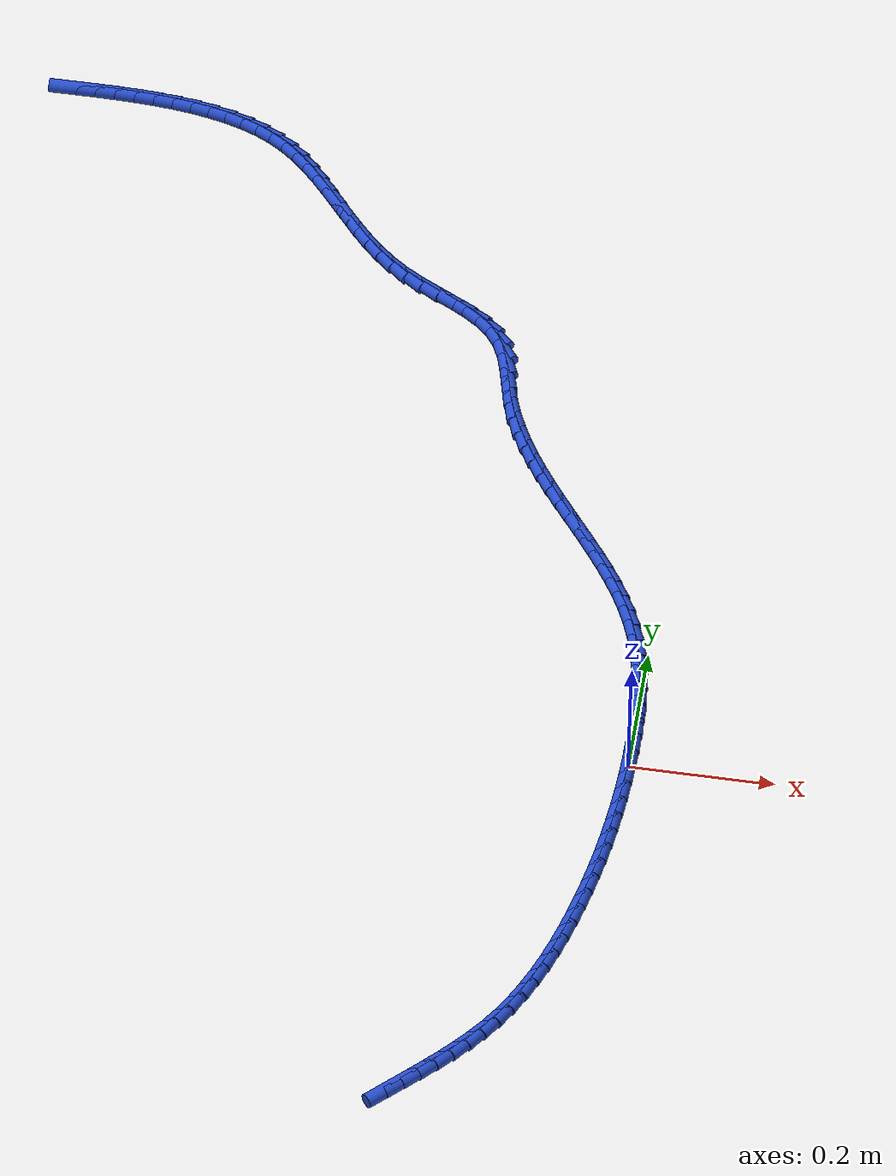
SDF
<sdf version="1.6">
 <world name="default">
  <model name="ground_plane">
   <static>1</static>
   <link name="link">
    <collision name="collision">
     <geometry><plane><normal>0 0 1</normal><size>100 100</size></plane></geometry>
     <surface><friction><ode><mu>100</mu><mu2>50</mu2></ode></friction></surface>
    </collision>
    <visual name="visual">
     <cast_shadows>0</cast_shadows>
     <geometry><plane><normal>0 0 1</normal><size>100 100</size></plane></geometry>
     <material>
      <script><uri>file://media/materials/scripts/gazebo.material</uri><name>Gazebo/WhiteGlow</name></script>
     </material>
    </visual>
   </link>
  </model>
  <model name="line">
   <link name="link_0">
    <pose>-9.107298248878237e-18 4.163336342344337e-17 0.01 0 1.57 1.551484172950166</pose>
    <collision name="collision">
     <geometry><cylinder><radius>0.01</radius><length>0.08</length></cylinder></geometry>
    </collision>
    <visual name="visual">
     <material>
      <script><name>Gazebo/Blue</name><uri>file://media/materials/scripts/gazebo.material</uri></script>
     </material>
     <geometry><cylinder><radius>0.01</radius><length>0.08</length></cylinder></geometry>
    </visual>
   </link>
   <link name="link_1">
    <pose>0.0005427913405773272 0.02810271001218487 0.01 0 1.57 -1.565745009043975</pose>
    <collision name="collision">
     <geometry><cylinder><radius>0.01</radius><length>0.08</length></cylinder></geometry>
    </collision>
    <visual name="visual">
     <material>
      <script><name>Gazebo/Blue</name><uri>file://media/materials/scripts/gazebo.material</uri></script>
     </material>
     <geometry><cylinder><radius>0.01</radius><length>0.08</length></cylinder></geometry>
    </visual>
   </link>
   <link name="link_2">
    <pose>0.00040029658367146204 0.05631189264009979 0.01 0 1.57 -1.5363101366053682</pose>
    <collision name="collision">
     <geometry><cylinder><radius>0.01</radius><length>0.08</length></cylinder></geometry>
    </collision>
    <visual name="visual">
     <material>
      <script><name>Gazebo/Blue</name><uri>file://media/materials/scripts/gazebo.material</uri></script>
     </material>
     <geometry><cylinder><radius>0.01</radius><length>0.08</length></cylinder></geometry>
    </visual>
   </link>
   <link name="link_3">
    <pose>-0.0005725924026010101 0.08451168118131286 0.01 0 1.57 -1.5015067465468235</pose>
    <collision name="collision">
     <geometry><cylinder><radius>0.01</radius><length>0.08</length></cylinder></geometry>
    </collision>
    <visual name="visual">
     <material>
      <script><name>Gazebo/Blue</name><uri>file://media/materials/scripts/gazebo.material</uri></script>
     </material>
     <geometry><cylinder><radius>0.01</radius><length>0.08</length></cylinder></geometry>
    </visual>
   </link>
   <link name="link_4">
    <pose>-0.002520983750123495 0.1125862089333922 0.01 0 1.57 -1.4609766809511677</pose>
    <collision name="collision">
     <geometry><cylinder><radius>0.01</radius><length>0.08</length></cylinder></geometry>
    </collision>
    <visual name="visual">
     <material>
      <script><name>Gazebo/Blue</name><uri>file://media/materials/scripts/gazebo.material</uri></script>
     </material>
     <geometry><cylinder><radius>0.01</radius><length>0.08</length></cylinder></geometry>
    </visual>
   </link>
   <link name="link_5">
    <pose>-0.005589985590779398 0.14041960919390578 0.01 0 1.57 -1.414324397645262</pose>
    <collision name="collision">
     <geometry><cylinder><radius>0.01</radius><length>0.08</length></cylinder></geometry>
    </collision>
    <visual name="visual">
     <material>
      <script><name>Gazebo/Blue</name><uri>file://media/materials/scripts/gazebo.material</uri></script>
     </material>
     <geometry><cylinder><radius>0.01</radius><length>0.08</length></cylinder></geometry>
    </visual>
   </link>
   <link name="link_6">
    <pose>-0.009924706056452128 0.16789601526042172 0.01 0 1.57 -1.3611525101138615</pose>
    <collision name="collision">
     <geometry><cylinder><radius>0.01</radius><length>0.08</length></cylinder></geometry>
    </collision>
    <visual name="visual">
     <material>
      <script><name>Gazebo/Blue</name><uri>file://media/materials/scripts/gazebo.material</uri></script>
     </material>
     <geometry><cylinder><radius>0.01</radius><length>0.08</length></cylinder></geometry>
    </visual>
   </link>
   <link name="link_7">
    <pose>-0.015670253279025083 0.19489956043050793 0.01 0 1.57 -1.3011140120505347</pose>
    <collision name="collision">
     <geometry><cylinder><radius>0.01</radius><length>0.08</length></cylinder></geometry>
    </collision>
    <visual name="visual">
     <material>
      <script><name>Gazebo/Blue</name><uri>file://media/materials/scripts/gazebo.material</uri></script>
     </material>
     <geometry><cylinder><radius>0.01</radius><length>0.08</length></cylinder></geometry>
    </visual>
   </link>
   <link name="link_8">
    <pose>-0.022971735390381675 0.22131437800173268 0.01 0 1.57 -1.234057572113319</pose>
    <collision name="collision">
     <geometry><cylinder><radius>0.01</radius><length>0.08</length></cylinder></geometry>
    </collision>
    <visual name="visual">
     <material>
      <script><name>Gazebo/Blue</name><uri>file://media/materials/scripts/gazebo.material</uri></script>
     </material>
     <geometry><cylinder><radius>0.01</radius><length>0.08</length></cylinder></geometry>
    </visual>
   </link>
   <link name="link_9">
    <pose>-0.03197252396105613 0.2470256445715553 0.01 0 1.57 -1.1655607419627865</pose>
    <collision name="collision">
     <geometry><cylinder><radius>0.01</radius><length>0.08</length></cylinder></geometry>
    </collision>
    <visual name="visual">
     <material>
      <script><name>Gazebo/Blue</name><uri>file://media/materials/scripts/gazebo.material</uri></script>
     </material>
     <geometry><cylinder><radius>0.01</radius><length>0.08</length></cylinder></geometry>
    </visual>
   </link>
   <link name="link_10">
    <pose>-0.042684838785796576 0.2719973307480866 0.01 0 1.57 -1.1054644885469476</pose>
    <collision name="collision">
     <geometry><cylinder><radius>0.01</radius><length>0.08</length></cylinder></geometry>
    </collision>
    <visual name="visual">
     <material>
      <script><name>Gazebo/Blue</name><uri>file://media/materials/scripts/gazebo.material</uri></script>
     </material>
     <geometry><cylinder><radius>0.01</radius><length>0.08</length></cylinder></geometry>
    </visual>
   </link>
   <link name="link_11">
    <pose>-0.054900380949217856 0.2963258914576315 0.01 0 1.57 -1.055064962549709</pose>
    <collision name="collision">
     <geometry><cylinder><radius>0.01</radius><length>0.08</length></cylinder></geometry>
    </collision>
    <visual name="visual">
     <material>
      <script><name>Gazebo/Blue</name><uri>file://media/materials/scripts/gazebo.material</uri></script>
     </material>
     <geometry><cylinder><radius>0.01</radius><length>0.08</length></cylinder></geometry>
    </visual>
   </link>
   <link name="link_12">
    <pose>-0.06838971442847842 0.3201204804821537 0.01 0 1.57 -1.0144284640028725</pose>
    <collision name="collision">
     <geometry><cylinder><radius>0.01</radius><length>0.08</length></cylinder></geometry>
    </collision>
    <visual name="visual">
     <material>
      <script><name>Gazebo/Blue</name><uri>file://media/materials/scripts/gazebo.material</uri></script>
     </material>
     <geometry><cylinder><radius>0.01</radius><length>0.08</length></cylinder></geometry>
    </visual>
   </link>
   <link name="link_13">
    <pose>-0.08292340320073685 0.3434902516036167 0.01 0 1.57 -0.9834184994799567</pose>
    <collision name="collision">
     <geometry><cylinder><radius>0.01</radius><length>0.08</length></cylinder></geometry>
    </collision>
    <visual name="visual">
     <material>
      <script><name>Gazebo/Blue</name><uri>file://media/materials/scripts/gazebo.material</uri></script>
     </material>
     <geometry><cylinder><radius>0.01</radius><length>0.08</length></cylinder></geometry>
    </visual>
   </link>
   <link name="link_14">
    <pose>-0.0982720112431516 0.366544358603984 0.01 0 1.57 -0.9618122379678639</pose>
    <collision name="collision">
     <geometry><cylinder><radius>0.01</radius><length>0.08</length></cylinder></geometry>
    </collision>
    <visual name="visual">
     <material>
      <script><name>Gazebo/Blue</name><uri>file://media/materials/scripts/gazebo.material</uri></script>
     </material>
     <geometry><cylinder><radius>0.01</radius><length>0.08</length></cylinder></geometry>
    </visual>
   </link>
   <link name="link_15">
    <pose>-0.11420610253288122 0.38939195526521914 0.01 0 1.57 -0.9493845383832721</pose>
    <collision name="collision">
     <geometry><cylinder><radius>0.01</radius><length>0.08</length></cylinder></geometry>
    </collision>
    <visual name="visual">
     <material>
      <script><name>Gazebo/Blue</name><uri>file://media/materials/scripts/gazebo.material</uri></script>
     </material>
     <geometry><cylinder><radius>0.01</radius><length>0.08</length></cylinder></geometry>
    </visual>
   </link>
   <link name="link_16">
    <pose>-0.13049624104708418 0.4121421953692855 0.01 0 1.57 -0.945961211068427</pose>
    <collision name="collision">
     <geometry><cylinder><radius>0.01</radius><length>0.08</length></cylinder></geometry>
    </collision>
    <visual name="visual">
     <material>
      <script><name>Gazebo/Blue</name><uri>file://media/materials/scripts/gazebo.material</uri></script>
     </material>
     <geometry><cylinder><radius>0.01</radius><length>0.08</length></cylinder></geometry>
    </visual>
   </link>
   <link name="link_17">
    <pose>-0.14691299076291903 0.43490423269814693 0.01 0 1.57 -0.9514463935267233</pose>
    <collision name="collision">
     <geometry><cylinder><radius>0.01</radius><length>0.08</length></cylinder></geometry>
    </collision>
    <visual name="visual">
     <material>
      <script><name>Gazebo/Blue</name><uri>file://media/materials/scripts/gazebo.material</uri></script>
     </material>
     <geometry><cylinder><radius>0.01</radius><length>0.08</length></cylinder></geometry>
    </visual>
   </link>
   <link name="link_18">
    <pose>-0.16322691565754427 0.45778722103376657 0.01 0 1.57 -0.965828306093649</pose>
    <collision name="collision">
     <geometry><cylinder><radius>0.01</radius><length>0.08</length></cylinder></geometry>
    </collision>
    <visual name="visual">
     <material>
      <script><name>Gazebo/Blue</name><uri>file://media/materials/scripts/gazebo.material</uri></script>
     </material>
     <geometry><cylinder><radius>0.01</radius><length>0.08</length></cylinder></geometry>
    </visual>
   </link>
   <link name="link_19">
    <pose>-0.17920857970811843 0.4809003141581081 0.01 0 1.57 -0.9891653862440924</pose>
    <collision name="collision">
     <geometry><cylinder><radius>0.01</radius><length>0.08</length></cylinder></geometry>
    </collision>
    <visual name="visual">
     <material>
      <script><name>Gazebo/Blue</name><uri>file://media/materials/scripts/gazebo.material</uri></script>
     </material>
     <geometry><cylinder><radius>0.01</radius><length>0.08</length></cylinder></geometry>
    </visual>
   </link>
   <link name="link_20">
    <pose>-0.19462854689179998 0.504352665853135 0.01 0 1.57 -1.0215523020878132</pose>
    <collision name="collision">
     <geometry><cylinder><radius>0.01</radius><length>0.08</length></cylinder></geometry>
    </collision>
    <visual name="visual">
     <material>
      <script><name>Gazebo/Blue</name><uri>file://media/materials/scripts/gazebo.material</uri></script>
     </material>
     <geometry><cylinder><radius>0.01</radius><length>0.08</length></cylinder></geometry>
    </visual>
   </link>
   <link name="link_21">
    <pose>-0.20925738118574744 0.5282534299008108 0.01 0 1.57 -1.063063683374744</pose>
    <collision name="collision">
     <geometry><cylinder><radius>0.01</radius><length>0.08</length></cylinder></geometry>
    </collision>
    <visual name="visual">
     <material>
      <script><name>Gazebo/Blue</name><uri>file://media/materials/scripts/gazebo.material</uri></script>
     </material>
     <geometry><cylinder><radius>0.01</radius><length>0.08</length></cylinder></geometry>
    </visual>
   </link>
   <link name="link_22">
    <pose>-0.22286564656711938 0.5527117600830993 0.01 0 1.57 -1.1136737793806426</pose>
    <collision name="collision">
     <geometry><cylinder><radius>0.01</radius><length>0.08</length></cylinder></geometry>
    </collision>
    <visual name="visual">
     <material>
      <script><name>Gazebo/Blue</name><uri>file://media/materials/scripts/gazebo.material</uri></script>
     </material>
     <geometry><cylinder><radius>0.01</radius><length>0.08</length></cylinder></geometry>
    </visual>
   </link>
   <link name="link_23">
    <pose>-0.23522390701307427 0.5778368101819635 0.01 0 1.57 -1.1731541740522073</pose>
    <collision name="collision">
     <geometry><cylinder><radius>0.01</radius><length>0.08</length></cylinder></geometry>
    </collision>
    <visual name="visual">
     <material>
      <script><name>Gazebo/Blue</name><uri>file://media/materials/scripts/gazebo.material</uri></script>
     </material>
     <geometry><cylinder><radius>0.01</radius><length>0.08</length></cylinder></geometry>
    </visual>
   </link>
   <link name="link_24">
    <pose>-0.24610272650077059 0.6037377339793673 0.01 0 1.57 -1.24096045702606</pose>
    <collision name="collision">
     <geometry><cylinder><radius>0.01</radius><length>0.08</length></cylinder></geometry>
    </collision>
    <visual name="visual">
     <material>
      <script><name>Gazebo/Blue</name><uri>file://media/materials/scripts/gazebo.material</uri></script>
     </material>
     <geometry><cylinder><radius>0.01</radius><length>0.08</length></cylinder></geometry>
    </visual>
   </link>
   <link name="link_25">
    <pose>-0.25527266900736684 0.630523685257274 0.01 0 1.57 -1.3113827533540725</pose>
    <collision name="collision">
     <geometry><cylinder><radius>0.01</radius><length>0.08</length></cylinder></geometry>
    </collision>
    <visual name="visual">
     <material>
      <script><name>Gazebo/Blue</name><uri>file://media/materials/scripts/gazebo.material</uri></script>
     </material>
     <geometry><cylinder><radius>0.01</radius><length>0.08</length></cylinder></geometry>
    </visual>
   </link>
   <link name="link_26">
    <pose>-0.2626243480211201 0.65822471452186 0.01 0 1.57 -1.3376726835134465</pose>
    <collision name="collision">
     <geometry><cylinder><radius>0.01</radius><length>0.08</length></cylinder></geometry>
    </collision>
    <visual name="visual">
     <material>
      <script><name>Gazebo/Blue</name><uri>file://media/materials/scripts/gazebo.material</uri></script>
     </material>
     <geometry><cylinder><radius>0.01</radius><length>0.08</length></cylinder></geometry>
    </visual>
   </link>
   <link name="link_27">
    <pose>-0.2692397196739341 0.6860858702844164 0.01 0 1.57 -1.2931679342303561</pose>
    <collision name="collision">
     <geometry><cylinder><radius>0.01</radius><length>0.08</length></cylinder></geometry>
    </collision>
    <visual name="visual">
     <material>
      <script><name>Gazebo/Blue</name><uri>file://media/materials/scripts/gazebo.material</uri></script>
     </material>
     <geometry><cylinder><radius>0.01</radius><length>0.08</length></cylinder></geometry>
    </visual>
   </link>
   <link name="link_28">
    <pose>-0.2768823166532206 0.7129030952019313 0.01 0 1.57 -1.1688672299421539</pose>
    <collision name="collision">
     <geometry><cylinder><radius>0.01</radius><length>0.08</length></cylinder></geometry>
    </collision>
    <visual name="visual">
     <material>
      <script><name>Gazebo/Blue</name><uri>file://media/materials/scripts/gazebo.material</uri></script>
     </material>
     <geometry><cylinder><radius>0.01</radius><length>0.08</length></cylinder></geometry>
    </visual>
   </link>
   <link name="link_29">
    <pose>-0.2873236914929968 0.7374670474772387 0.01 0 1.57 -0.9625971926734253</pose>
    <collision name="collision">
     <geometry><cylinder><radius>0.01</radius><length>0.08</length></cylinder></geometry>
    </collision>
    <visual name="visual">
     <material>
      <script><name>Gazebo/Blue</name><uri>file://media/materials/scripts/gazebo.material</uri></script>
     </material>
     <geometry><cylinder><radius>0.01</radius><length>0.08</length></cylinder></geometry>
    </visual>
   </link>
   <link name="link_30">
    <pose>-0.3021240761465666 0.7587245869912512 0.01 0 1.57 -0.7636432868093413</pose>
    <collision name="collision">
     <geometry><cylinder><radius>0.01</radius><length>0.08</length></cylinder></geometry>
    </collision>
    <visual name="visual">
     <material>
      <script><name>Gazebo/Blue</name><uri>file://media/materials/scripts/gazebo.material</uri></script>
     </material>
     <geometry><cylinder><radius>0.01</radius><length>0.08</length></cylinder></geometry>
    </visual>
   </link>
   <link name="link_31">
    <pose>-0.32111128002613154 0.7769031271192484 0.01 0 1.57 -0.6241413143283348</pose>
    <collision name="collision">
     <geometry><cylinder><radius>0.01</radius><length>0.08</length></cylinder></geometry>
    </collision>
    <visual name="visual">
     <material>
      <script><name>Gazebo/Blue</name><uri>file://media/materials/scripts/gazebo.material</uri></script>
     </material>
     <geometry><cylinder><radius>0.01</radius><length>0.08</length></cylinder></geometry>
    </visual>
   </link>
   <link name="link_32">
    <pose>-0.3432644490844522 0.7928573871810703 0.01 0 1.57 -0.5408287048338407</pose>
    <collision name="collision">
     <geometry><cylinder><radius>0.01</radius><length>0.08</length></cylinder></geometry>
    </collision>
    <visual name="visual">
     <material>
      <script><name>Gazebo/Blue</name><uri>file://media/materials/scripts/gazebo.material</uri></script>
     </material>
     <geometry><cylinder><radius>0.01</radius><length>0.08</length></cylinder></geometry>
    </visual>
   </link>
   <link name="link_33">
    <pose>-0.3675569112519301 0.807446386999863 0.01 0 1.57 -0.5061602920310745</pose>
    <collision name="collision">
     <geometry><cylinder><radius>0.01</radius><length>0.08</length></cylinder></geometry>
    </collision>
    <visual name="visual">
     <material>
      <script><name>Gazebo/Blue</name><uri>file://media/materials/scripts/gazebo.material</uri></script>
     </material>
     <geometry><cylinder><radius>0.01</radius><length>0.08</length></cylinder></geometry>
    </visual>
   </link>
   <link name="link_34">
    <pose>-0.3929619944589669 0.821529146398772 0.01 0 1.57 -0.5152704477597619</pose>
    <collision name="collision">
     <geometry><cylinder><radius>0.01</radius><length>0.08</length></cylinder></geometry>
    </collision>
    <visual name="visual">
     <material>
      <script><name>Gazebo/Blue</name><uri>file://media/materials/scripts/gazebo.material</uri></script>
     </material>
     <geometry><cylinder><radius>0.01</radius><length>0.08</length></cylinder></geometry>
    </visual>
   </link>
   <link name="link_35">
    <pose>-0.4184530266359636 0.8359646852009417 0.01 0 1.57 -0.5674367135877375</pose>
    <collision name="collision">
     <geometry><cylinder><radius>0.01</radius><length>0.08</length></cylinder></geometry>
    </collision>
    <visual name="visual">
     <material>
      <script><name>Gazebo/Blue</name><uri>file://media/materials/scripts/gazebo.material</uri></script>
     </material>
     <geometry><cylinder><radius>0.01</radius><length>0.08</length></cylinder></geometry>
    </visual>
   </link>
   <link name="link_36">
    <pose>-0.44300333571332207 0.8516120232295181 0.01 0 1.57 -0.656594400091862</pose>
    <collision name="collision">
     <geometry><cylinder><radius>0.01</radius><length>0.08</length></cylinder></geometry>
    </collision>
    <visual name="visual">
     <material>
      <script><name>Gazebo/Blue</name><uri>file://media/materials/scripts/gazebo.material</uri></script>
     </material>
     <geometry><cylinder><radius>0.01</radius><length>0.08</length></cylinder></geometry>
    </visual>
   </link>
   <link name="link_37">
    <pose>-0.4657708135645299 0.8691580612607689 0.01 0 1.57 -0.7422710341360119</pose>
    <collision name="collision">
     <geometry><cylinder><radius>0.01</radius><length>0.08</length></cylinder></geometry>
    </collision>
    <visual name="visual">
     <material>
      <script><name>Gazebo/Blue</name><uri>file://media/materials/scripts/gazebo.material</uri></script>
     </material>
     <geometry><cylinder><radius>0.01</radius><length>0.08</length></cylinder></geometry>
    </visual>
   </link>
   <link name="link_38">
    <pose>-0.48680837306795843 0.8884550291177987 0.01 0 1.57 -0.8106165457230103</pose>
    <collision name="collision">
     <geometry><cylinder><radius>0.01</radius><length>0.08</length></cylinder></geometry>
    </collision>
    <visual name="visual">
     <material>
      <script><name>Gazebo/Blue</name><uri>file://media/materials/scripts/gazebo.material</uri></script>
     </material>
     <geometry><cylinder><radius>0.01</radius><length>0.08</length></cylinder></geometry>
    </visual>
   </link>
   <link name="link_39">
    <pose>-0.5064398553271532 0.9091024967210815 0.01 0 1.57 -0.8611785684220311</pose>
    <collision name="collision">
     <geometry><cylinder><radius>0.01</radius><length>0.08</length></cylinder></geometry>
    </collision>
    <visual name="visual">
     <material>
      <script><name>Gazebo/Blue</name><uri>file://media/materials/scripts/gazebo.material</uri></script>
     </material>
     <geometry><cylinder><radius>0.01</radius><length>0.08</length></cylinder></geometry>
    </visual>
   </link>
   <link name="link_40">
    <pose>-0.5249891605470319 0.930699978874843 0.01 0 1.57 -0.8940372588538208</pose>
    <collision name="collision">
     <geometry><cylinder><radius>0.01</radius><length>0.08</length></cylinder></geometry>
    </collision>
    <visual name="visual">
     <material>
      <script><name>Gazebo/Blue</name><uri>file://media/materials/scripts/gazebo.material</uri></script>
     </material>
     <geometry><cylinder><radius>0.01</radius><length>0.08</length></cylinder></geometry>
    </visual>
   </link>
   <link name="link_41">
    <pose>-0.5427801889325138 0.9528469903833117 0.01 0 1.57 -0.9093264269095521</pose>
    <collision name="collision">
     <geometry><cylinder><radius>0.01</radius><length>0.08</length></cylinder></geometry>
    </collision>
    <visual name="visual">
     <material>
      <script><name>Gazebo/Blue</name><uri>file://media/materials/scripts/gazebo.material</uri></script>
     </material>
     <geometry><cylinder><radius>0.01</radius><length>0.08</length></cylinder></geometry>
    </visual>
   </link>
   <link name="link_42">
    <pose>-0.5601368406885167 0.9751430460507136 0.01 0 1.57 -0.9069226876301162</pose>
    <collision name="collision">
     <geometry><cylinder><radius>0.01</radius><length>0.08</length></cylinder></geometry>
    </collision>
    <visual name="visual">
     <material>
      <script><name>Gazebo/Blue</name><uri>file://media/materials/scripts/gazebo.material</uri></script>
     </material>
     <geometry><cylinder><radius>0.01</radius><length>0.08</length></cylinder></geometry>
    </visual>
   </link>
   <link name="link_43">
    <pose>-0.5773830160199588 0.9971876606812755 0.01 0 1.57 -0.8862863287968417</pose>
    <collision name="collision">
     <geometry><cylinder><radius>0.01</radius><length>0.08</length></cylinder></geometry>
    </collision>
    <visual name="visual">
     <material>
      <script><name>Gazebo/Blue</name><uri>file://media/materials/scripts/gazebo.material</uri></script>
     </material>
     <geometry><cylinder><radius>0.01</radius><length>0.08</length></cylinder></geometry>
    </visual>
   </link>
   <link name="link_44">
    <pose>-0.5948426151317584 1.018580349079224 0.01 0 1.57 -0.8464470127626167</pose>
    <collision name="collision">
     <geometry><cylinder><radius>0.01</radius><length>0.08</length></cylinder></geometry>
    </collision>
    <visual name="visual">
     <material>
      <script><name>Gazebo/Blue</name><uri>file://media/materials/scripts/gazebo.material</uri></script>
     </material>
     <geometry><cylinder><radius>0.01</radius><length>0.08</length></cylinder></geometry>
    </visual>
   </link>
   <link name="link_45">
    <pose>-0.6128395382288341 1.038920626048787 0.01 0 1.57 -0.7861726406434201</pose>
    <collision name="collision">
     <geometry><cylinder><radius>0.01</radius><length>0.08</length></cylinder></geometry>
    </collision>
    <visual name="visual">
     <material>
      <script><name>Gazebo/Blue</name><uri>file://media/materials/scripts/gazebo.material</uri></script>
     </material>
     <geometry><cylinder><radius>0.01</radius><length>0.08</length></cylinder></geometry>
    </visual>
   </link>
   <link name="link_46">
    <pose>-0.6316976855161038 1.0578080063941904 0.01 0 1.57 -0.7044134666287377</pose>
    <collision name="collision">
     <geometry><cylinder><radius>0.01</radius><length>0.08</length></cylinder></geometry>
    </collision>
    <visual name="visual">
     <material>
      <script><name>Gazebo/Blue</name><uri>file://media/materials/scripts/gazebo.material</uri></script>
     </material>
     <geometry><cylinder><radius>0.01</radius><length>0.08</length></cylinder></geometry>
    </visual>
   </link>
   <link name="link_47">
    <pose>-0.6517409571984863 1.0748420049196608 0.01 0 1.57 -0.6025228184148906</pose>
    <collision name="collision">
     <geometry><cylinder><radius>0.01</radius><length>0.08</length></cylinder></geometry>
    </collision>
    <visual name="visual">
     <material>
      <script><name>Gazebo/Blue</name><uri>file://media/materials/scripts/gazebo.material</uri></script>
     </material>
     <geometry><cylinder><radius>0.01</radius><length>0.08</length></cylinder></geometry>
    </visual>
   </link>
   <link name="link_48">
    <pose>-0.6732698553087253 1.0896505891494355 0.01 0 1.57 -0.4987566623759975</pose>
    <collision name="collision">
     <geometry><cylinder><radius>0.01</radius><length>0.08</length></cylinder></geometry>
    </collision>
    <visual name="visual">
     <material>
      <script><name>Gazebo/Blue</name><uri>file://media/materials/scripts/gazebo.material</uri></script>
     </material>
     <geometry><cylinder><radius>0.01</radius><length>0.08</length></cylinder></geometry>
    </visual>
   </link>
   <link name="link_49">
    <pose>-0.696307548001608 1.1021989710352331 0.01 0 1.57 -0.40565415533101484</pose>
    <collision name="collision">
     <geometry><cylinder><radius>0.01</radius><length>0.08</length></cylinder></geometry>
    </collision>
    <visual name="visual">
     <material>
      <script><name>Gazebo/Blue</name><uri>file://media/materials/scripts/gazebo.material</uri></script>
     </material>
     <geometry><cylinder><radius>0.01</radius><length>0.08</length></cylinder></geometry>
    </visual>
   </link>
   <link name="link_50">
    <pose>-0.7206957144428275 1.1126730573485697 0.01 0 1.57 -0.323993584192527</pose>
    <collision name="collision">
     <geometry><cylinder><radius>0.01</radius><length>0.08</length></cylinder></geometry>
    </collision>
    <visual name="visual">
     <material>
      <script><name>Gazebo/Blue</name><uri>file://media/materials/scripts/gazebo.material</uri></script>
     </material>
     <geometry><cylinder><radius>0.01</radius><length>0.08</length></cylinder></geometry>
    </visual>
   </link>
   <link name="link_51">
    <pose>-0.7462728916771637 1.1212625757528683 0.01 0 1.57 -0.25357395761807516</pose>
    <collision name="collision">
     <geometry><cylinder><radius>0.01</radius><length>0.08</length></cylinder></geometry>
    </collision>
    <visual name="visual">
     <material>
      <script><name>Gazebo/Blue</name><uri>file://media/materials/scripts/gazebo.material</uri></script>
     </material>
     <geometry><cylinder><radius>0.01</radius><length>0.08</length></cylinder></geometry>
    </visual>
   </link>
   <link name="link_52">
    <pose>-0.7728776167493947 1.1281572539115508 0.01 0 1.57 -0.19373179015244635</pose>
    <collision name="collision">
     <geometry><cylinder><radius>0.01</radius><length>0.08</length></cylinder></geometry>
    </collision>
    <visual name="visual">
     <material>
      <script><name>Gazebo/Blue</name><uri>file://media/materials/scripts/gazebo.material</uri></script>
     </material>
     <geometry><cylinder><radius>0.01</radius><length>0.08</length></cylinder></geometry>
    </visual>
   </link>
   <link name="link_53">
    <pose>-0.8003484267042998 1.1335468194880398 0.01 0 1.57 -0.14360509545390757</pose>
    <collision name="collision">
     <geometry><cylinder><radius>0.01</radius><length>0.08</length></cylinder></geometry>
    </collision>
    <visual name="visual">
     <material>
      <script><name>Gazebo/Blue</name><uri>file://media/materials/scripts/gazebo.material</uri></script>
     </material>
     <geometry><cylinder><radius>0.01</radius><length>0.08</length></cylinder></geometry>
    </visual>
   </link>
   <link name="link_54">
    <pose>-0.8285238585866581 1.1376210001457565 0.01 0 1.57 -0.10231101858222692</pose>
    <collision name="collision">
     <geometry><cylinder><radius>0.01</radius><length>0.08</length></cylinder></geometry>
    </collision>
    <visual name="visual">
     <material>
      <script><name>Gazebo/Blue</name><uri>file://media/materials/scripts/gazebo.material</uri></script>
     </material>
     <geometry><cylinder><radius>0.01</radius><length>0.08</length></cylinder></geometry>
    </visual>
   </link>
   <link name="link_55">
    <pose>-0.8572424494412481 1.1405695235481246 0.01 0 1.57 -0.06905066343870814</pose>
    <collision name="collision">
     <geometry><cylinder><radius>0.01</radius><length>0.08</length></cylinder></geometry>
    </collision>
    <visual name="visual">
     <material>
      <script><name>Gazebo/Blue</name><uri>file://media/materials/scripts/gazebo.material</uri></script>
     </material>
     <geometry><cylinder><radius>0.01</radius><length>0.08</length></cylinder></geometry>
    </visual>
   </link>
   <link name="link_56">
    <pose>-0.8863427363128485 1.1425821173585649 0.01 0 1.57 -0.043164489737550306</pose>
    <collision name="collision">
     <geometry><cylinder><radius>0.01</radius><length>0.08</length></cylinder></geometry>
    </collision>
    <visual name="visual">
     <material>
      <script><name>Gazebo/Blue</name><uri>file://media/materials/scripts/gazebo.material</uri></script>
     </material>
     <geometry><cylinder><radius>0.01</radius><length>0.08</length></cylinder></geometry>
    </visual>
   </link>
   <link name="link_57">
    <pose>-0.9156632562462386 1.1438485092405002 0.01 0 1.57 -0.024159177852286832</pose>
    <collision name="collision">
     <geometry><cylinder><radius>0.01</radius><length>0.08</length></cylinder></geometry>
    </collision>
    <visual name="visual">
     <material>
      <script><name>Gazebo/Blue</name><uri>file://media/materials/scripts/gazebo.material</uri></script>
     </material>
     <geometry><cylinder><radius>0.01</radius><length>0.08</length></cylinder></geometry>
    </visual>
   </link>
   <link name="link_58">
    <pose>-0.9450425462861973 1.144558426857353 0.01 0 1.57 -0.011721147005447357</pose>
    <collision name="collision">
     <geometry><cylinder><radius>0.01</radius><length>0.08</length></cylinder></geometry>
    </collision>
    <visual name="visual">
     <material>
      <script><name>Gazebo/Blue</name><uri>file://media/materials/scripts/gazebo.material</uri></script>
     </material>
     <geometry><cylinder><radius>0.01</radius><length>0.08</length></cylinder></geometry>
    </visual>
   </link>
   <link name="link_59">
    <pose>-0.9743191434775033 1.144901597872545 0.01 0 1.57 -0.005726862427849469</pose>
    <collision name="collision">
     <geometry><cylinder><radius>0.01</radius><length>0.08</length></cylinder></geometry>
    </collision>
    <visual name="visual">
     <material>
      <script><name>Gazebo/Blue</name><uri>file://media/materials/scripts/gazebo.material</uri></script>
     </material>
     <geometry><cylinder><radius>0.01</radius><length>0.08</length></cylinder></geometry>
    </visual>
   </link>
   <link name="link_236">
    <pose>-0.2315619133623809 -0.5952514110289692 0.01 0 1.57 0.7739568036602632</pose>
    <collision name="collision">
     <geometry><cylinder><radius>0.01</radius><length>0.08</length></cylinder></geometry>
    </collision>
    <visual name="visual">
     <material>
      <script><name>Gazebo/Blue</name><uri>file://media/materials/scripts/gazebo.material</uri></script>
     </material>
     <geometry><cylinder><radius>0.01</radius><length>0.08</length></cylinder></geometry>
    </visual>
   </link>
   <link name="link_237">
    <pose>-0.2122815999664766 -0.5764073117871509 0.01 0 1.57 0.7797315394014203</pose>
    <collision name="collision">
     <geometry><cylinder><radius>0.01</radius><length>0.08</length></cylinder></geometry>
    </collision>
    <visual name="visual">
     <material>
      <script><name>Gazebo/Blue</name><uri>file://media/materials/scripts/gazebo.material</uri></script>
     </material>
     <geometry><cylinder><radius>0.01</radius><length>0.08</length></cylinder></geometry>
    </visual>
   </link>
   <link name="link_238">
    <pose>-0.19326281568913503 -0.5576028598618032 0.01 0 1.57 0.7970999551564049</pose>
    <collision name="collision">
     <geometry><cylinder><radius>0.01</radius><length>0.08</length></cylinder></geometry>
    </collision>
    <visual name="visual">
     <material>
      <script><name>Gazebo/Blue</name><uri>file://media/materials/scripts/gazebo.material</uri></script>
     </material>
     <geometry><cylinder><radius>0.01</radius><length>0.08</length></cylinder></geometry>
    </visual>
   </link>
   <link name="link_239">
    <pose>-0.1746992083175348 -0.5385996331546118 0.01 0 1.57 0.8262169311230612</pose>
    <collision name="collision">
     <geometry><cylinder><radius>0.01</radius><length>0.08</length></cylinder></geometry>
    </collision>
    <visual name="visual">
     <material>
      <script><name>Gazebo/Blue</name><uri>file://media/materials/scripts/gazebo.material</uri></script>
     </material>
     <geometry><cylinder><radius>0.01</radius><length>0.08</length></cylinder></geometry>
    </visual>
   </link>
   <link name="link_240">
    <pose>-0.15678442563885456 -0.5191592095672628 0.01 0 1.57 0.8670625245569912</pose>
    <collision name="collision">
     <geometry><cylinder><radius>0.01</radius><length>0.08</length></cylinder></geometry>
    </collision>
    <visual name="visual">
     <material>
      <script><name>Gazebo/Blue</name><uri>file://media/materials/scripts/gazebo.material</uri></script>
     </material>
     <geometry><cylinder><radius>0.01</radius><length>0.08</length></cylinder></geometry>
    </visual>
   </link>
   <link name="link_241">
    <pose>-0.1397121154402731 -0.4990431670014418 0.01 0 1.57 0.9193205134676852</pose>
    <collision name="collision">
     <geometry><cylinder><radius>0.01</radius><length>0.08</length></cylinder></geometry>
    </collision>
    <visual name="visual">
     <material>
      <script><name>Gazebo/Blue</name><uri>file://media/materials/scripts/gazebo.material</uri></script>
     </material>
     <geometry><cylinder><radius>0.01</radius><length>0.08</length></cylinder></geometry>
    </visual>
   </link>
   <link name="link_242">
    <pose>-0.12367592550896905 -0.47801308335883474 0.01 0 1.57 0.9820584483237403</pose>
    <collision name="collision">
     <geometry><cylinder><radius>0.01</radius><length>0.08</length></cylinder></geometry>
    </collision>
    <visual name="visual">
     <material>
      <script><name>Gazebo/Blue</name><uri>file://media/materials/scripts/gazebo.material</uri></script>
     </material>
     <geometry><cylinder><radius>0.01</radius><length>0.08</length></cylinder></geometry>
    </visual>
   </link>
   <link name="link_243">
    <pose>-0.1088667093549498 -0.45583460889362887 0.01 0 1.57 1.0473377031874749</pose>
    <collision name="collision">
     <geometry><cylinder><radius>0.01</radius><length>0.08</length></cylinder></geometry>
    </collision>
    <visual name="visual">
     <material>
      <script><name>Gazebo/Blue</name><uri>file://media/materials/scripts/gazebo.material</uri></script>
     </material>
     <geometry><cylinder><radius>0.01</radius><length>0.08</length></cylinder></geometry>
    </visual>
   </link>
   <link name="link_244">
    <pose>-0.09536273748518906 -0.4324374712388317 0.01 0 1.57 1.1060289509705163</pose>
    <collision name="collision">
     <geometry><cylinder><radius>0.01</radius><length>0.08</length></cylinder></geometry>
    </collision>
    <visual name="visual">
     <material>
      <script><name>Gazebo/Blue</name><uri>file://media/materials/scripts/gazebo.material</uri></script>
     </material>
     <geometry><cylinder><radius>0.01</radius><length>0.08</length></cylinder></geometry>
    </visual>
   </link>
   <link name="link_245">
    <pose>-0.08309370074341822 -0.4079679365904123 0.01 0 1.57 1.158040093451465</pose>
    <collision name="collision">
     <geometry><cylinder><radius>0.01</radius><length>0.08</length></cylinder></geometry>
    </collision>
    <visual name="visual">
     <material>
      <script><name>Gazebo/Blue</name><uri>file://media/materials/scripts/gazebo.material</uri></script>
     </material>
     <geometry><cylinder><radius>0.01</radius><length>0.08</length></cylinder></geometry>
    </visual>
   </link>
   <link name="link_246">
    <pose>-0.07197912221380158 -0.38258708953871323 0.01 0 1.57 1.2039497769162628</pose>
    <collision name="collision">
     <geometry><cylinder><radius>0.01</radius><length>0.08</length></cylinder></geometry>
    </collision>
    <visual name="visual">
     <material>
      <script><name>Gazebo/Blue</name><uri>file://media/materials/scripts/gazebo.material</uri></script>
     </material>
     <geometry><cylinder><radius>0.01</radius><length>0.08</length></cylinder></geometry>
    </visual>
   </link>
   <link name="link_247">
    <pose>-0.06193852498050235 -0.3564560146740747 0.01 0 1.57 1.2443258085158697</pose>
    <collision name="collision">
     <geometry><cylinder><radius>0.01</radius><length>0.08</length></cylinder></geometry>
    </collision>
    <visual name="visual">
     <material>
      <script><name>Gazebo/Blue</name><uri>file://media/materials/scripts/gazebo.material</uri></script>
     </material>
     <geometry><cylinder><radius>0.01</radius><length>0.08</length></cylinder></geometry>
    </visual>
   </link>
   <link name="link_248">
    <pose>-0.05289143212768413 -0.3297357965868375 0.01 0 1.57 1.2796916160162521</pose>
    <collision name="collision">
     <geometry><cylinder><radius>0.01</radius><length>0.08</length></cylinder></geometry>
    </collision>
    <visual name="visual">
     <material>
      <script><name>Gazebo/Blue</name><uri>file://media/materials/scripts/gazebo.material</uri></script>
     </material>
     <geometry><cylinder><radius>0.01</radius><length>0.08</length></cylinder></geometry>
    </visual>
   </link>
   <link name="link_249">
    <pose>-0.04475736673951051 -0.30258751986734256 0.01 0 1.57 1.3105078985311363</pose>
    <collision name="collision">
     <geometry><cylinder><radius>0.01</radius><length>0.08</length></cylinder></geometry>
    </collision>
    <visual name="visual">
     <material>
      <script><name>Gazebo/Blue</name><uri>file://media/materials/scripts/gazebo.material</uri></script>
     </material>
     <geometry><cylinder><radius>0.01</radius><length>0.08</length></cylinder></geometry>
    </visual>
   </link>
   <link name="link_250">
    <pose>-0.03745585190014508 -0.27517226910593084 0.01 0 1.57 1.3371635711881629</pose>
    <collision name="collision">
     <geometry><cylinder><radius>0.01</radius><length>0.08</length></cylinder></geometry>
    </collision>
    <visual name="visual">
     <material>
      <script><name>Gazebo/Blue</name><uri>file://media/materials/scripts/gazebo.material</uri></script>
     </material>
     <geometry><cylinder><radius>0.01</radius><length>0.08</length></cylinder></geometry>
    </visual>
   </link>
   <link name="link_251">
    <pose>-0.030906410693751437 -0.24765112889294313 0.01 0 1.57 1.360188938998731</pose>
    <collision name="collision">
     <geometry><cylinder><radius>0.01</radius><length>0.08</length></cylinder></geometry>
    </collision>
    <visual name="visual">
     <material>
      <script><name>Gazebo/Blue</name><uri>file://media/materials/scripts/gazebo.material</uri></script>
     </material>
     <geometry><cylinder><radius>0.01</radius><length>0.08</length></cylinder></geometry>
    </visual>
   </link>
   <link name="link_252">
    <pose>-0.025032413319906847 -0.22017397551495504 0.01 0 1.57 1.3820129046323317</pose>
    <collision name="collision">
     <geometry><cylinder><radius>0.01</radius><length>0.08</length></cylinder></geometry>
    </collision>
    <visual name="visual">
     <material>
      <script><name>Gazebo/Blue</name><uri>file://media/materials/scripts/gazebo.material</uri></script>
     </material>
     <geometry><cylinder><radius>0.01</radius><length>0.08</length></cylinder></geometry>
    </visual>
   </link>
   <link name="link_253">
    <pose>-0.019797366072048978 -0.19277375153456844 0.01 0 1.57 1.4039149554174282</pose>
    <collision name="collision">
     <geometry><cylinder><radius>0.01</radius><length>0.08</length></cylinder></geometry>
    </collision>
    <visual name="visual">
     <material>
      <script><name>Gazebo/Blue</name><uri>file://media/materials/scripts/gazebo.material</uri></script>
     </material>
     <geometry><cylinder><radius>0.01</radius><length>0.08</length></cylinder></geometry>
    </visual>
   </link>
   <link name="link_254">
    <pose>-0.015188645871099003 -0.16541385409785359 0.01 0 1.57 1.4258004379030946</pose>
    <collision name="collision">
     <geometry><cylinder><radius>0.01</radius><length>0.08</length></cylinder></geometry>
    </collision>
    <visual name="visual">
     <material>
      <script><name>Gazebo/Blue</name><uri>file://media/materials/scripts/gazebo.material</uri></script>
     </material>
     <geometry><cylinder><radius>0.01</radius><length>0.08</length></cylinder></geometry>
    </visual>
   </link>
   <link name="link_255">
    <pose>-0.011193945705441471 -0.13805675951026275 0.01 0 1.57 1.4475554335739496</pose>
    <collision name="collision">
     <geometry><cylinder><radius>0.01</radius><length>0.08</length></cylinder></geometry>
    </collision>
    <visual name="visual">
     <material>
      <script><name>Gazebo/Blue</name><uri>file://media/materials/scripts/gazebo.material</uri></script>
     </material>
     <geometry><cylinder><radius>0.01</radius><length>0.08</length></cylinder></geometry>
    </visual>
   </link>
   <link name="link_256">
    <pose>-0.007800958563460945 -0.11066494407724825 0.01 0 1.57 1.4690668975555596</pose>
    <collision name="collision">
     <geometry><cylinder><radius>0.01</radius><length>0.08</length></cylinder></geometry>
    </collision>
    <visual name="visual">
     <material>
      <script><name>Gazebo/Blue</name><uri>file://media/materials/scripts/gazebo.material</uri></script>
     </material>
     <geometry><cylinder><radius>0.01</radius><length>0.08</length></cylinder></geometry>
    </visual>
   </link>
   <link name="link_257">
    <pose>-0.00499737743354198 -0.08320088410426243 0.01 0 1.57 1.4902249203359657</pose>
    <collision name="collision">
     <geometry><cylinder><radius>0.01</radius><length>0.08</length></cylinder></geometry>
    </collision>
    <visual name="visual">
     <material>
      <script><name>Gazebo/Blue</name><uri>file://media/materials/scripts/gazebo.material</uri></script>
     </material>
     <geometry><cylinder><radius>0.01</radius><length>0.08</length></cylinder></geometry>
    </visual>
   </link>
   <link name="link_258">
    <pose>-0.0027708953040691316 -0.05562705589675761 0.01 0 1.57 1.5109248582653438</pose>
    <collision name="collision">
     <geometry><cylinder><radius>0.01</radius><length>0.08</length></cylinder></geometry>
    </collision>
    <visual name="visual">
     <material>
      <script><name>Gazebo/Blue</name><uri>file://media/materials/scripts/gazebo.material</uri></script>
     </material>
     <geometry><cylinder><radius>0.01</radius><length>0.08</length></cylinder></geometry>
    </visual>
   </link>
   <link name="link_259">
    <pose>-0.0011092051634269602 -0.027905935760186084 0.01 0 1.57 1.5310692386109415</pose>
    <collision name="collision">
     <geometry><cylinder><radius>0.01</radius><length>0.08</length></cylinder></geometry>
    </collision>
    <visual name="visual">
     <material>
      <script><name>Gazebo/Blue</name><uri>file://media/materials/scripts/gazebo.material</uri></script>
     </material>
     <geometry><cylinder><radius>0.01</radius><length>0.08</length></cylinder></geometry>
    </visual>
   </link>
   <link name="link_260">
    <pose>-2.3852447794681098e-17 -2.0122792321330962e-16 0.01 0 1.57 1.5505693632828013</pose>
    <collision name="collision">
     <geometry><cylinder><radius>0.01</radius><length>0.08</length></cylinder></geometry>
    </collision>
    <visual name="visual">
     <material>
      <script><name>Gazebo/Blue</name><uri>file://media/materials/scripts/gazebo.material</uri></script>
     </material>
     <geometry><cylinder><radius>0.01</radius><length>0.08</length></cylinder></geometry>
    </visual>
   </link>
   <link name="link_261">
    <pose>0.000569027197827124 0.02812827507834778 0.01 0 1.57 1.5693465587658577</pose>
    <collision name="collision">
     <geometry><cylinder><radius>0.01</radius><length>0.08</length></cylinder></geometry>
    </collision>
    <visual name="visual">
     <material>
      <script><name>Gazebo/Blue</name><uri>file://media/materials/scripts/gazebo.material</uri></script>
     </material>
     <geometry><cylinder><radius>0.01</radius><length>0.08</length></cylinder></geometry>
    </visual>
   </link>
   <link name="link_262">
    <pose>0.0006101834416699218 0.056516413169405484 0.01 0 1.57 1.5600001757258055</pose>
    <collision name="collision">
     <geometry><cylinder><radius>0.01</radius><length>0.08</length></cylinder></geometry>
    </collision>
    <visual name="visual">
     <material>
      <script><name>Gazebo/Blue</name><uri>file://media/materials/scripts/gazebo.material</uri></script>
     </material>
     <geometry><cylinder><radius>0.01</radius><length>0.08</length></cylinder></geometry>
    </visual>
   </link>
  </model>
 </world>
</sdf>
